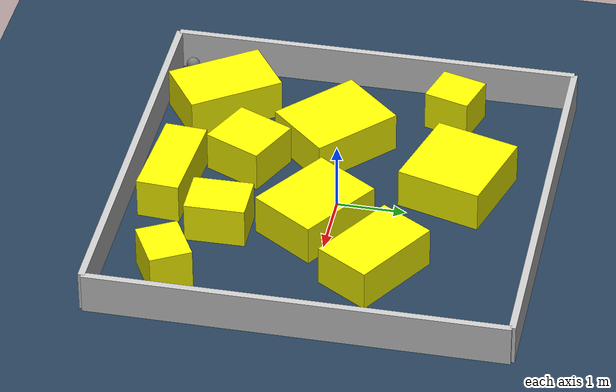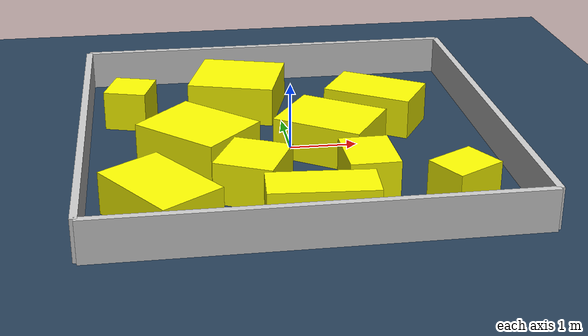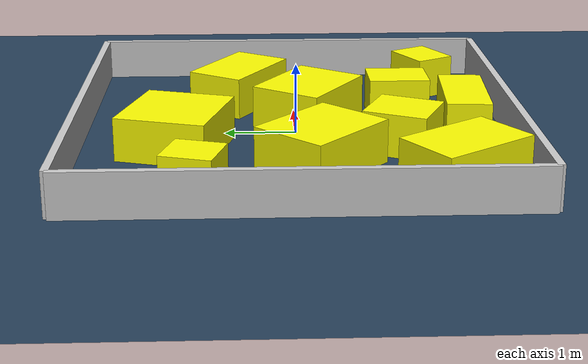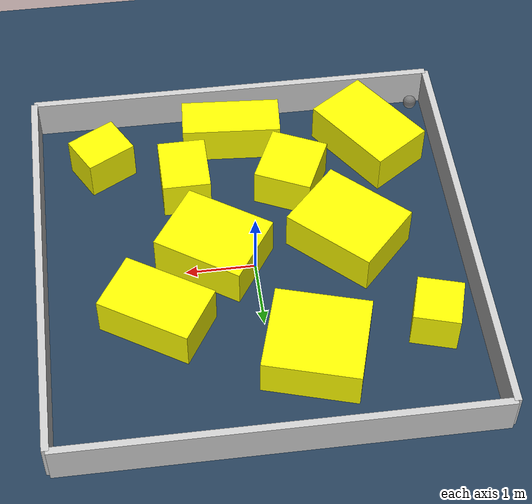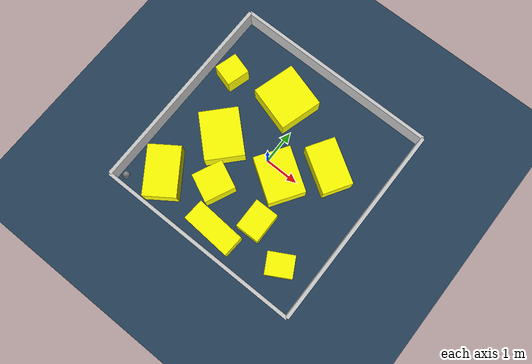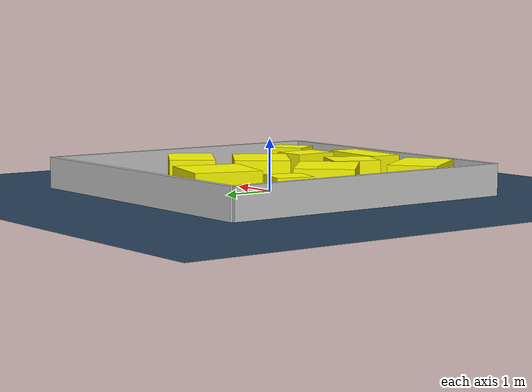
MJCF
<?xml version="1.0" ?>
<mujoco model="generated_environment">
  <option timestep="0.01" integrator="RK4" cone="elliptic"/>
  <default>
    <geom density="1"/>
  </default>
  <asset>
    <texture builtin="gradient" height="3072" rgb1="0.3 0.5 0.7" rgb2="0 0 0" type="skybox" width="512"/>
    <texture builtin="checker" height="300" mark="edge" markrgb="0.8 0.8 0.8" name="groundplane" rgb1="0.2 0.3 0.4" rgb2="0.1 0.2 0.3" type="2d" width="300"/>
    <material name="groundplane" reflectance="0.2" texrepeat="5 5" texture="groundplane" texuniform="true"/>
    <material name="robot" rgba="1.0 1.0 0.0 1.0"/>
  </asset>
  <worldbody>
    <light dir="0 0 -1" directional="true" pos="0 0 1.5"/>
    <geom condim="4" friction="0.5 0.005 0.001" material="groundplane" name="floor" size="0 0 0.05" type="plane"/>
    <body name="walls">
      <geom name="wall_1" condim="4" pos="-3.0 0.0 0.3" rgba="0.800000011920929 0.800000011920929 0.800000011920929 1.0" size="0.05 3.0 0.3" type="box"/>
      <geom name="wall_2" condim="4" pos="3.0 0.0 0.3" rgba="0.800000011920929 0.800000011920929 0.800000011920929 1.0" size="0.05 3.0 0.3" type="box"/>
      <geom name="wall_3" condim="4" pos="0.0 -3.0 0.3" rgba="0.800000011920929 0.800000011920929 0.800000011920929 1.0" size="3.0 0.05 0.3" type="box"/>
      <geom name="wall_4" condim="4" pos="0.0 3.0 0.3" rgba="0.800000011920929 0.800000011920929 0.800000011920929 1.0" size="3.0 0.05 0.3" type="box"/>
    </body>
    <body name="robot">
      <joint name="joint_x" type="slide" pos="0 0 0" axis="1 0 0"/>
      <joint name="joint_y" type="slide" pos="0 0 0" axis="0 1 0"/>
      <geom name="robot" type="sphere" pos="-2.75 -2.75 0.2" size="0.1 0.0 0.0" mass="5.0" friction="1.0 0.005 0.001" condim="4" rgba="0.5 0.5 0.5 1.0"/>
    </body>
    <body name="obstacle_1_movable">
      <geom name="obstacle_1_movable" condim="4" pos="-1.372323892316273 -0.28974008852359656 0.3" euler="0 0 316.90168722064675" friction="0.0 0.005 0.001" rgba="1 1 0 1" size="0.693207600219412 0.5571543711798599 0.3" type="box" mass="0.1"/>
      <joint type="free"/>
    </body>
    <body name="obstacle_2_movable">
      <geom name="obstacle_2_movable" condim="4" pos="-0.6245976807862246 1.652901192311175 0.3" euler="0 0 73.71386224533222" friction="0.0 0.005 0.001" rgba="1 1 0 1" size="0.6297674250661627 0.6682693405262532 0.3" type="box" mass="0.1"/>
      <joint type="free"/>
    </body>
    <body name="obstacle_3_movable">
      <geom name="obstacle_3_movable" condim="4" pos="-2.3265992062025305 1.3261357004439693 0.3" euler="0 0 343.6512178818615" friction="0.0 0.005 0.001" rgba="1 1 0 1" size="0.32366548917300203 0.3417507912987498 0.3" type="box" mass="0.1"/>
      <joint type="free"/>
    </body>
    <body name="obstacle_4_movable">
      <geom name="obstacle_4_movable" condim="4" pos="-0.7000245599550761 -1.4391972797860122 0.3" euler="0 0 155.22877122995808" friction="0.0 0.005 0.001" rgba="1 1 0 1" size="0.4202135815590295 0.4482626401595415 0.3" type="box" mass="0.1"/>
      <joint type="free"/>
    </body>
    <body name="obstacle_5_movable">
      <geom name="obstacle_5_movable" condim="4" pos="0.8643024478277468 -1.5366934538963826 0.3" euler="0 0 90.72514165015232" friction="0.0 0.005 0.001" rgba="1 1 0 1" size="0.43891144814566735 0.3473767753927305 0.3" type="box" mass="0.1"/>
      <joint type="free"/>
    </body>
    <body name="obstacle_6_movable">
      <geom name="obstacle_6_movable" condim="4" pos="0.08055888631328667 -2.4028999707084027 0.3" euler="0 0 176.25950125065222" friction="0.0 0.005 0.001" rgba="1 1 0 1" size="0.727435788661205 0.31156356509040534 0.3" type="box" mass="0.1"/>
      <joint type="free"/>
    </body>
    <body name="obstacle_7_movable">
      <geom name="obstacle_7_movable" condim="4" pos="1.450617623846013 0.8157059258384884 0.3" euler="0 0 328.13321482568267" friction="0.0 0.005 0.001" rgba="1 1 0 1" size="0.6834298280640926 0.43392969411455723 0.3" type="box" mass="0.1"/>
      <joint type="free"/>
    </body>
    <body name="obstacle_8_movable">
      <geom name="obstacle_8_movable" condim="4" pos="0.5637847038968649 -0.20886776228683512 0.3" euler="0 0 56.48700413050909" friction="0.0 0.005 0.001" rgba="1 1 0 1" size="0.5305975223323721 0.6693069077994436 0.3" type="box" mass="0.1"/>
      <joint type="free"/>
    </body>
    <body name="obstacle_9_movable">
      <geom name="obstacle_9_movable" condim="4" pos="2.044619588971969 -2.062764006546978 0.3" euler="0 0 29.065795965819497" friction="0.0 0.005 0.001" rgba="1 1 0 1" size="0.3759858851276686 0.3092565002800649 0.3" type="box" mass="0.1"/>
      <joint type="free"/>
    </body>
    <body name="obstacle_10_movable">
      <geom name="obstacle_10_movable" condim="4" pos="-1.9626978636850323 -2.074018835590151 0.3" euler="0 0 124.4756146619276" friction="0.0 0.005 0.001" rgba="1 1 0 1" size="0.7175976149339074 0.4679925011595922 0.3" type="box" mass="0.1"/>
      <joint type="free"/>
    </body>
  </worldbody>
  <actuator>
    <motor name="actuator_x" joint="joint_x" gear="1" ctrlrange="-1 1"/>
    <motor name="actuator_y" joint="joint_y" gear="1" ctrlrange="-1 1"/>
  </actuator>
</mujoco>
